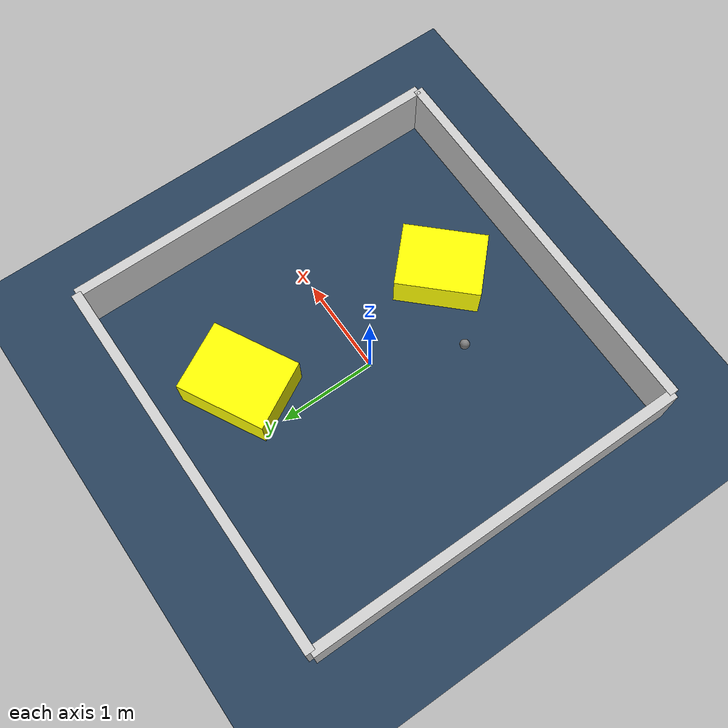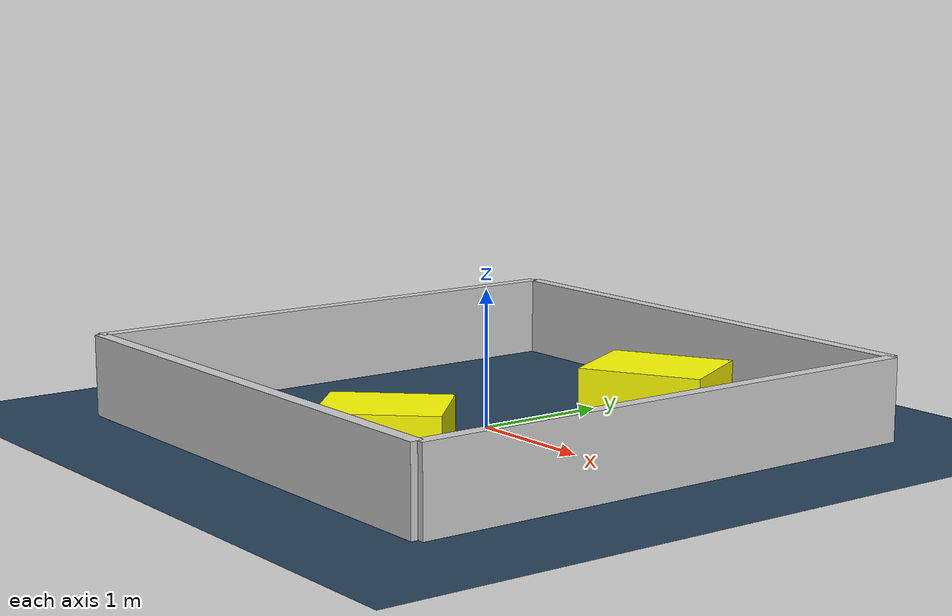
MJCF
<?xml version="1.0" ?>
<mujoco model="generated_environment">
  <option timestep="0.01" integrator="RK4" cone="elliptic"/>
  <default>
    <geom density="1"/>
  </default>
  <asset>
    <texture builtin="gradient" height="3072" rgb1="0.3 0.5 0.7" rgb2="0 0 0" type="skybox" width="512"/>
    <texture builtin="checker" height="300" mark="edge" markrgb="0.8 0.8 0.8" name="groundplane" rgb1="0.2 0.3 0.4" rgb2="0.1 0.2 0.3" type="2d" width="300"/>
    <material name="groundplane" reflectance="0.2" texrepeat="5 5" texture="groundplane" texuniform="true"/>
    <material name="robot" rgba="0.0 1.0 0.0 1"/>
  </asset>
  <worldbody>
    <light dir="0 0 -1" directional="true" pos="0 0 1.5"/>
    <geom condim="4" friction="1.0 0.005 0.001" material="groundplane" name="floor" size="0 0 0.05" type="plane"/>
    <body name="walls">
      <geom name="wall_1" condim="4" pos="-2.0 0.0 0.3" rgba="0.800000011920929 0.800000011920929 0.800000011920929 1.0" size="0.05 2.0 0.3" type="box"/>
      <geom name="wall_2" condim="4" pos="2.0 0.0 0.3" rgba="0.800000011920929 0.800000011920929 0.800000011920929 1.0" size="0.05 2.0 0.3" type="box"/>
      <geom name="wall_3" condim="4" pos="0.0 -2.0 0.3" rgba="0.800000011920929 0.800000011920929 0.800000011920929 1.0" size="2.0 0.05 0.3" type="box"/>
      <geom name="wall_4" condim="4" pos="0.0 2.0 0.3" rgba="0.800000011920929 0.800000011920929 0.800000011920929 1.0" size="2.0 0.05 0.3" type="box"/>
    </body>
    <body name="robot">
      <joint name="joint_x" type="slide" pos="0 0 0" axis="1 0 0"/>
      <joint name="joint_y" type="slide" pos="0 0 0" axis="0 1 0"/>
      <geom name="robot" type="sphere" pos="-0.41503991986127287 -0.8362363290533945 0.2" size="0.05" mass="5." friction="1.0 0.005 0.0001" condim="4"/>
      <site name="sensor_ball"/>
    </body>
    <body name="obstacle_1_movable">
      <geom name="obstacle_1_movable" condim="4" pos="0.5048841694659418 1.1590855322537936 0.2" euler="0 0 28.3282088510334" friction="1.0 0.005 0.001" rgba="1 1 0 1" size="0.4607129794849461 0.36354360604574915 0.2" type="box" mass="0.1"/>
      <joint type="free"/>
    </body>
    <body name="obstacle_2_movable">
      <geom name="obstacle_2_movable" condim="4" pos="0.37975645973370753 -1.128335648297923 0.2" euler="0 0 316.32687140600433" friction="1.0 0.005 0.001" rgba="1 1 0 1" size="0.3299409394245526 0.42832984924081685 0.2" type="box" mass="0.1"/>
      <joint type="free"/>
    </body>
  </worldbody>
  <actuator>
    <motor name="actuator_x" joint="joint_x" gear="1" ctrlrange="-1 1"/>
    <motor name="actuator_y" joint="joint_y" gear="1" ctrlrange="-1 1"/>
  </actuator>
</mujoco>
